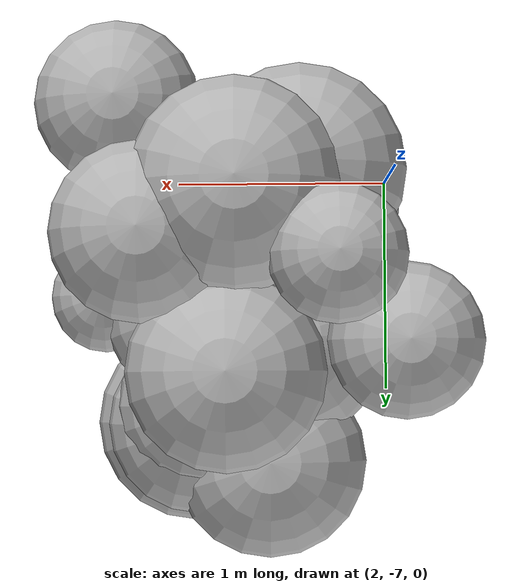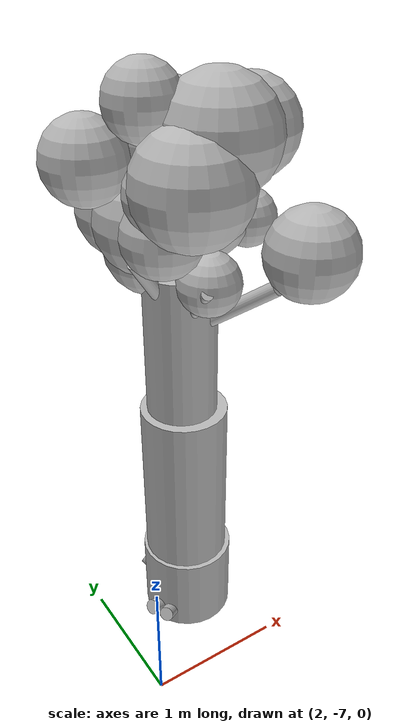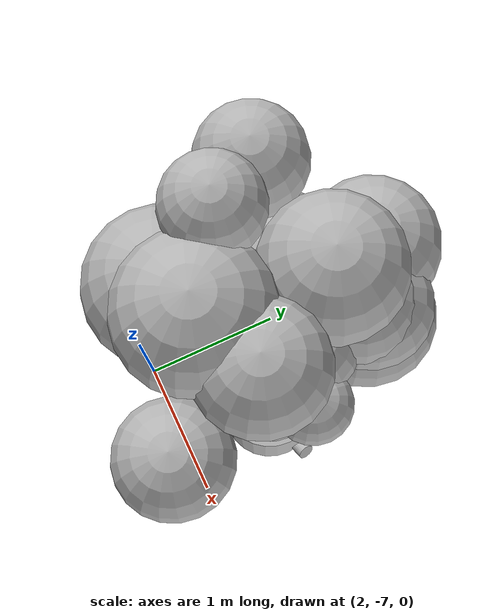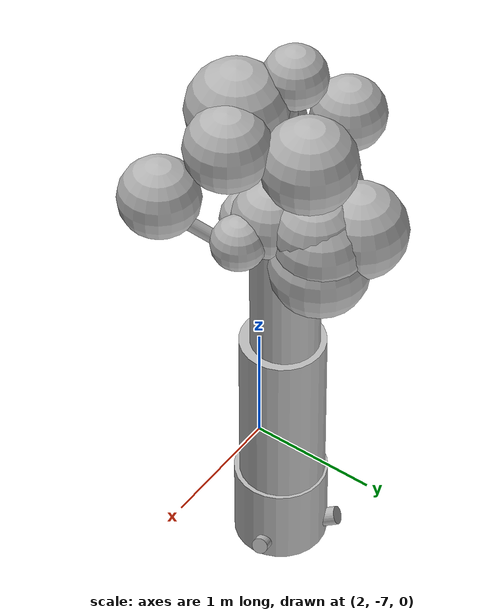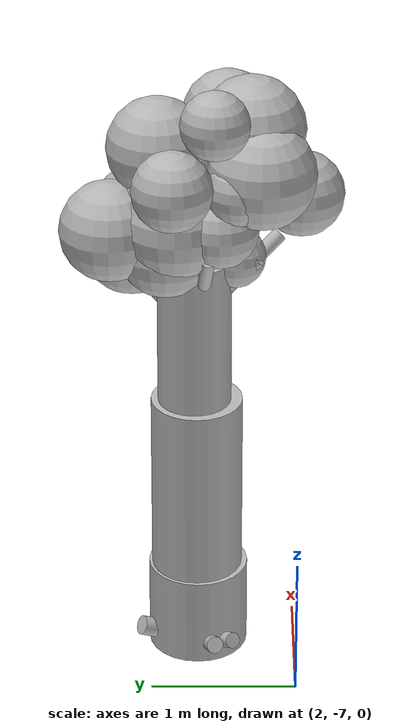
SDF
<sdf version="1.6">
 <world name="default">
  <model name="tree_5">
   <static>true</static>
   <pose>2.6690 -6.3220 0 0 0 0</pose>
   <link name="trunk">
    <pose>0 0 1.5000 0 0 0</pose>
    <collision name="trunk_c">
     <geometry><cylinder><radius>0.3500</radius><length>3.0000</length></cylinder></geometry>
    </collision>
   </link>
   <link name="trunk_v0">
    <pose>-0.0005 0.0014 0.3100 0 0 0</pose>
    <visual name="trunk_v0_v">
     <geometry><cylinder><radius>0.3448</radius><length>0.6448</length></cylinder></geometry>
     <material>
      <script>
       <uri>model://bushfire/materials/scripts</uri>
       <uri>model://bushfire/materials/textures</uri>
       <name>Bushfire/CharBark</name>
      </script>
     </material>
    </visual>
   </link>
   <link name="trunk_v1">
    <pose>-0.0034 0.0100 1.2700 0 0 0</pose>
    <visual name="trunk_v1_v">
     <geometry><cylinder><radius>0.3150</radius><length>1.3520</length></cylinder></geometry>
     <material>
      <script>
       <uri>model://bushfire/materials/scripts</uri>
       <uri>model://bushfire/materials/textures</uri>
       <name>Bushfire/BarkStringy</name>
      </script>
     </material>
    </visual>
   </link>
   <link name="trunk_v2">
    <pose>-0.0086 0.0252 2.4600 0 0 0</pose>
    <visual name="trunk_v2_v">
     <geometry><cylinder><radius>0.2520</radius><length>1.1232</length></cylinder></geometry>
     <material>
      <script>
       <uri>model://bushfire/materials/scripts</uri>
       <uri>model://bushfire/materials/textures</uri>
       <name>Bushfire/BarkStringy</name>
      </script>
     </material>
    </visual>
   </link>
   <link name="root0">
    <pose>0.2321 0.0609 0.09 0 1.150 0.257</pose>
    <visual name="root0_v">
     <geometry><cylinder><radius>0.0595</radius><length>0.4200</length></cylinder></geometry>
     <material>
      <script>
       <uri>model://bushfire/materials/scripts</uri>
       <uri>model://bushfire/materials/textures</uri>
       <name>Bushfire/CharBark</name>
      </script>
     </material>
    </visual>
   </link>
   <link name="root1">
    <pose>-0.1982 -0.1354 0.09 0 1.150 3.741</pose>
    <visual name="root1_v">
     <geometry><cylinder><radius>0.0560</radius><length>0.4200</length></cylinder></geometry>
     <material>
      <script>
       <uri>model://bushfire/materials/scripts</uri>
       <uri>model://bushfire/materials/textures</uri>
       <name>Bushfire/CharBark</name>
      </script>
     </material>
    </visual>
   </link>
   <link name="root2">
    <pose>-0.0915 0.2219 0.09 0 1.150 1.962</pose>
    <visual name="root2_v">
     <geometry><cylinder><radius>0.0677</radius><length>0.4200</length></cylinder></geometry>
     <material>
      <script>
       <uri>model://bushfire/materials/scripts</uri>
       <uri>model://bushfire/materials/textures</uri>
       <name>Bushfire/CharBark</name>
      </script>
     </material>
    </visual>
   </link>
   <link name="root3">
    <pose>-0.2309 -0.0655 0.09 0 1.150 3.418</pose>
    <visual name="root3_v">
     <geometry><cylinder><radius>0.0591</radius><length>0.4200</length></cylinder></geometry>
     <material>
      <script>
       <uri>model://bushfire/materials/scripts</uri>
       <uri>model://bushfire/materials/textures</uri>
       <name>Bushfire/CharBark</name>
      </script>
     </material>
    </visual>
   </link>
   <link name="branch0">
    <pose>-0.1894 -0.0329 2.8962 0 0.5807 3.3138</pose>
    <visual name="branch0_v">
     <geometry><cylinder><radius>0.0509</radius><length>0.7008</length></cylinder></geometry>
     <material>
      <script>
       <uri>model://bushfire/materials/scripts</uri>
       <uri>model://bushfire/materials/textures</uri>
       <name>Bushfire/BarkStringy</name>
      </script>
     </material>
    </visual>
   </link>
   <link name="branch1">
    <pose>-0.0408 -0.2048 2.8209 0 0.7624 4.5158</pose>
    <visual name="branch1_v">
     <geometry><cylinder><radius>0.0389</radius><length>0.6047</length></cylinder></geometry>
     <material>
      <script>
       <uri>model://bushfire/materials/scripts</uri>
       <uri>model://bushfire/materials/textures</uri>
       <name>Bushfire/BarkStringy</name>
      </script>
     </material>
    </visual>
   </link>
   <link name="branch2">
    <pose>0.1684 -0.2760 2.7976 0 0.9506 5.2603</pose>
    <visual name="branch2_v">
     <geometry><cylinder><radius>0.0512</radius><length>0.7945</length></cylinder></geometry>
     <material>
      <script>
       <uri>model://bushfire/materials/scripts</uri>
       <uri>model://bushfire/materials/textures</uri>
       <name>Bushfire/BarkStringy</name>
      </script>
     </material>
    </visual>
   </link>
   <link name="branch3">
    <pose>0.1472 0.0758 2.8397 0 0.6400 6.7587</pose>
    <visual name="branch3_v">
     <geometry><cylinder><radius>0.0486</radius><length>0.5545</length></cylinder></geometry>
     <material>
      <script>
       <uri>model://bushfire/materials/scripts</uri>
       <uri>model://bushfire/materials/textures</uri>
       <name>Bushfire/BarkStringy</name>
      </script>
     </material>
    </visual>
   </link>
   <link name="branch4">
    <pose>0.0327 0.2992 2.7586 0 0.7417 7.7452</pose>
    <visual name="branch4_v">
     <geometry><cylinder><radius>0.0388</radius><length>0.8912</length></cylinder></geometry>
     <material>
      <script>
       <uri>model://bushfire/materials/scripts</uri>
       <uri>model://bushfire/materials/textures</uri>
       <name>Bushfire/BarkStringy</name>
      </script>
     </material>
    </visual>
   </link>
   <link name="branch5">
    <pose>-0.1096 0.1742 3.0315 0 0.6291 8.4156</pose>
    <visual name="branch5_v">
     <geometry><cylinder><radius>0.0365</radius><length>0.6997</length></cylinder></geometry>
     <material>
      <script>
       <uri>model://bushfire/materials/scripts</uri>
       <uri>model://bushfire/materials/textures</uri>
       <name>Bushfire/BarkStringy</name>
      </script>
     </material>
    </visual>
   </link>
   <link name="foliage0">
    <pose>-0.2247 -0.1421 3.3458 0 0 0</pose>
    <visual name="foliage0_v">
     <geometry><sphere><radius>0.2646</radius></sphere></geometry>
     <material>
      <script>
       <uri>model://bushfire/materials/scripts</uri>
       <uri>model://bushfire/materials/textures</uri>
       <name>Bushfire/Foliage0</name>
      </script>
     </material>
    </visual>
   </link>
   <link name="foliage1">
    <pose>-0.2944 -0.2778 3.6546 0 0 0</pose>
    <visual name="foliage1_v">
     <geometry><sphere><radius>0.2319</radius></sphere></geometry>
     <material>
      <script>
       <uri>model://bushfire/materials/scripts</uri>
       <uri>model://bushfire/materials/textures</uri>
       <name>Bushfire/Foliage2</name>
      </script>
     </material>
    </visual>
   </link>
   <link name="foliage2">
    <pose>0.0312 -0.2803 3.5060 0 0 0</pose>
    <visual name="foliage2_v">
     <geometry><sphere><radius>0.1873</radius></sphere></geometry>
     <material>
      <script>
       <uri>model://bushfire/materials/scripts</uri>
       <uri>model://bushfire/materials/textures</uri>
       <name>Bushfire/Foliage2</name>
      </script>
     </material>
    </visual>
   </link>
   <link name="foliage3">
    <pose>0.1824 0.4429 3.0496 0 0 0</pose>
    <visual name="foliage3_v">
     <geometry><sphere><radius>0.3552</radius></sphere></geometry>
     <material>
      <script>
       <uri>model://bushfire/materials/scripts</uri>
       <uri>model://bushfire/materials/textures</uri>
       <name>Bushfire/Foliage0</name>
      </script>
     </material>
    </visual>
   </link>
   <link name="foliage4">
    <pose>-0.0823 0.5824 3.2652 0 0 0</pose>
    <visual name="foliage4_v">
     <geometry><sphere><radius>0.3428</radius></sphere></geometry>
     <material>
      <script>
       <uri>model://bushfire/materials/scripts</uri>
       <uri>model://bushfire/materials/textures</uri>
       <name>Bushfire/Foliage2</name>
      </script>
     </material>
    </visual>
   </link>
   <link name="foliage5">
    <pose>-0.3016 -0.1111 4.1196 0 0 0</pose>
    <visual name="foliage5_v">
     <geometry><sphere><radius>0.2311</radius></sphere></geometry>
     <material>
      <script>
       <uri>model://bushfire/materials/scripts</uri>
       <uri>model://bushfire/materials/textures</uri>
       <name>Bushfire/Foliage2</name>
      </script>
     </material>
    </visual>
   </link>
   <link name="foliage6">
    <pose>-0.0079 0.2245 3.4566 0 0 0</pose>
    <visual name="foliage6_v">
     <geometry><sphere><radius>0.2971</radius></sphere></geometry>
     <material>
      <script>
       <uri>model://bushfire/materials/scripts</uri>
       <uri>model://bushfire/materials/textures</uri>
       <name>Bushfire/Foliage1</name>
      </script>
     </material>
    </visual>
   </link>
   <link name="foliage7">
    <pose>-0.1871 -0.4187 3.7173 0 0 0</pose>
    <visual name="foliage7_v">
     <geometry><sphere><radius>0.3641</radius></sphere></geometry>
     <material>
      <script>
       <uri>model://bushfire/materials/scripts</uri>
       <uri>model://bushfire/materials/textures</uri>
       <name>Bushfire/Foliage2</name>
      </script>
     </material>
    </visual>
   </link>
   <link name="foliage8">
    <pose>0.1549 -0.1293 2.9609 0 0 0</pose>
    <visual name="foliage8_v">
     <geometry><sphere><radius>0.1678</radius></sphere></geometry>
     <material>
      <script>
       <uri>model://bushfire/materials/scripts</uri>
       <uri>model://bushfire/materials/textures</uri>
       <name>Bushfire/Foliage1</name>
      </script>
     </material>
    </visual>
   </link>
   <link name="foliage9">
    <pose>0.2390 0.4430 3.0661 0 0 0</pose>
    <visual name="foliage9_v">
     <geometry><sphere><radius>0.1621</radius></sphere></geometry>
     <material>
      <script>
       <uri>model://bushfire/materials/scripts</uri>
       <uri>model://bushfire/materials/textures</uri>
       <name>Bushfire/Foliage2</name>
      </script>
     </material>
    </visual>
   </link>
   <link name="foliage10">
    <pose>0.0336 0.3203 3.5889 0 0 0</pose>
    <visual name="foliage10_v">
     <geometry><sphere><radius>0.1583</radius></sphere></geometry>
     <material>
      <script>
       <uri>model://bushfire/materials/scripts</uri>
       <uri>model://bushfire/materials/textures</uri>
       <name>Bushfire/Foliage1</name>
      </script>
     </material>
    </visual>
   </link>
   <link name="foliage11">
    <pose>0.0068 0.0035 3.7508 0 0 0</pose>
    <visual name="foliage11_v">
     <geometry><sphere><radius>0.1538</radius></sphere></geometry>
     <material>
      <script>
       <uri>model://bushfire/materials/scripts</uri>
       <uri>model://bushfire/materials/textures</uri>
       <name>Bushfire/Foliage1</name>
      </script>
     </material>
    </visual>
   </link>
   <link name="foliage12">
    <pose>-0.0951 0.2152 3.1330 0 0 0</pose>
    <visual name="foliage12_v">
     <geometry><sphere><radius>0.3245</radius></sphere></geometry>
     <material>
      <script>
       <uri>model://bushfire/materials/scripts</uri>
       <uri>model://bushfire/materials/textures</uri>
       <name>Bushfire/Foliage2</name>
      </script>
     </material>
    </visual>
   </link>
   <link name="foliage13">
    <pose>0.0412 -0.2441 3.0096 0 0 0</pose>
    <visual name="foliage13_v">
     <geometry><sphere><radius>0.2126</radius></sphere></geometry>
     <material>
      <script>
       <uri>model://bushfire/materials/scripts</uri>
       <uri>model://bushfire/materials/textures</uri>
       <name>Bushfire/Foliage0</name>
      </script>
     </material>
    </visual>
   </link>
   <link name="foliage14">
    <pose>0.3491 -0.1985 3.9102 0 0 0</pose>
    <visual name="foliage14_v">
     <geometry><sphere><radius>0.3070</radius></sphere></geometry>
     <material>
      <script>
       <uri>model://bushfire/materials/scripts</uri>
       <uri>model://bushfire/materials/textures</uri>
       <name>Bushfire/Foliage0</name>
      </script>
     </material>
    </visual>
   </link>
   <link name="foliage15">
    <pose>0.2207 0.0647 3.3138 0 0 0</pose>
    <visual name="foliage15_v">
     <geometry><sphere><radius>0.2795</radius></sphere></geometry>
     <material>
      <script>
       <uri>model://bushfire/materials/scripts</uri>
       <uri>model://bushfire/materials/textures</uri>
       <name>Bushfire/Foliage1</name>
      </script>
     </material>
    </visual>
   </link>
   <link name="foliage16">
    <pose>0.1565 0.3856 3.3311 0 0 0</pose>
    <visual name="foliage16_v">
     <geometry><sphere><radius>0.2980</radius></sphere></geometry>
     <material>
      <script>
       <uri>model://bushfire/materials/scripts</uri>
       <uri>model://bushfire/materials/textures</uri>
       <name>Bushfire/Foliage2</name>
      </script>
     </material>
    </visual>
   </link>
   <link name="foliage17">
    <pose>-0.0969 -0.0855 3.2471 0 0 0</pose>
    <visual name="foliage17_v">
     <geometry><sphere><radius>0.1677</radius></sphere></geometry>
     <material>
      <script>
       <uri>model://bushfire/materials/scripts</uri>
       <uri>model://bushfire/materials/textures</uri>
       <name>Bushfire/Foliage0</name>
      </script>
     </material>
    </visual>
   </link>
   <link name="foliage18">
    <pose>-0.5419 0.1655 3.7692 0 0 0</pose>
    <visual name="foliage18_v">
     <geometry><sphere><radius>0.2680</radius></sphere></geometry>
     <material>
      <script>
       <uri>model://bushfire/materials/scripts</uri>
       <uri>model://bushfire/materials/textures</uri>
       <name>Bushfire/Foliage0</name>
      </script>
     </material>
    </visual>
   </link>
   <link name="foliage19">
    <pose>0.2106 0.0584 3.1686 0 0 0</pose>
    <visual name="foliage19_v">
     <geometry><sphere><radius>0.1655</radius></sphere></geometry>
     <material>
      <script>
       <uri>model://bushfire/materials/scripts</uri>
       <uri>model://bushfire/materials/textures</uri>
       <name>Bushfire/Foliage2</name>
      </script>
     </material>
    </visual>
   </link>
   <link name="foliage20">
    <pose>0.4567 -0.7005 3.2782 0 0 0</pose>
    <visual name="foliage20_v">
     <geometry><sphere><radius>0.2954</radius></sphere></geometry>
     <material>
      <script>
       <uri>model://bushfire/materials/scripts</uri>
       <uri>model://bushfire/materials/textures</uri>
       <name>Bushfire/Foliage2</name>
      </script>
     </material>
    </visual>
   </link>
   <link name="foliage21">
    <pose>0.0672 0.2691 3.8003 0 0 0</pose>
    <visual name="foliage21_v">
     <geometry><sphere><radius>0.3418</radius></sphere></geometry>
     <material>
      <script>
       <uri>model://bushfire/materials/scripts</uri>
       <uri>model://bushfire/materials/textures</uri>
       <name>Bushfire/Foliage2</name>
      </script>
     </material>
    </visual>
   </link>
   <link name="foliage22">
    <pose>0.1728 0.4476 3.2322 0 0 0</pose>
    <visual name="foliage22_v">
     <geometry><sphere><radius>0.3190</radius></sphere></geometry>
     <material>
      <script>
       <uri>model://bushfire/materials/scripts</uri>
       <uri>model://bushfire/materials/textures</uri>
       <name>Bushfire/Foliage0</name>
      </script>
     </material>
    </visual>
   </link>
   <link name="foliage23">
    <pose>-0.1800 0.2683 3.3701 0 0 0</pose>
    <visual name="foliage23_v">
     <geometry><sphere><radius>0.2052</radius></sphere></geometry>
     <material>
      <script>
       <uri>model://bushfire/materials/scripts</uri>
       <uri>model://bushfire/materials/textures</uri>
       <name>Bushfire/Foliage0</name>
      </script>
     </material>
    </visual>
   </link>
   <link name="foliage24">
    <pose>-0.1470 0.1492 3.3333 0 0 0</pose>
    <visual name="foliage24_v">
     <geometry><sphere><radius>0.3608</radius></sphere></geometry>
     <material>
      <script>
       <uri>model://bushfire/materials/scripts</uri>
       <uri>model://bushfire/materials/textures</uri>
       <name>Bushfire/Foliage1</name>
      </script>
     </material>
    </visual>
   </link>
   <link name="foliage25">
    <pose>0.0330 -0.3532 3.9476 0 0 0</pose>
    <visual name="foliage25_v">
     <geometry><sphere><radius>0.3621</radius></sphere></geometry>
     <material>
      <script>
       <uri>model://bushfire/materials/scripts</uri>
       <uri>model://bushfire/materials/textures</uri>
       <name>Bushfire/Foliage0</name>
      </script>
     </material>
    </visual>
   </link>
   <link name="foliage26">
    <pose>0.4955 -0.0056 3.2663 0 0 0</pose>
    <visual name="foliage26_v">
     <geometry><sphere><radius>0.1969</radius></sphere></geometry>
     <material>
      <script>
       <uri>model://bushfire/materials/scripts</uri>
       <uri>model://bushfire/materials/textures</uri>
       <name>Bushfire/Foliage2</name>
      </script>
     </material>
    </visual>
   </link>
  </model>
 </world>
</sdf>
